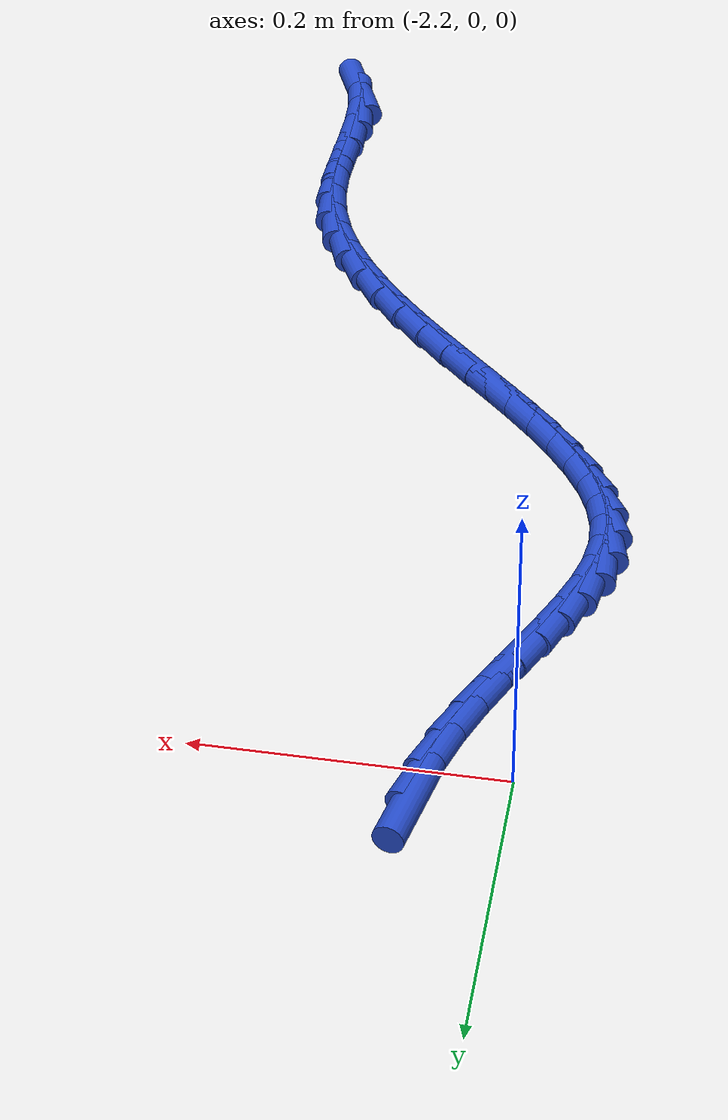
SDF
<sdf version="1.6">
 <world name="default">
  <model name="ground_plane">
   <static>1</static>
   <link name="link">
    <collision name="collision">
     <geometry><plane><normal>0 0 1</normal><size>100 100</size></plane></geometry>
     <surface><friction><ode><mu>100</mu><mu2>50</mu2></ode></friction></surface>
    </collision>
    <visual name="visual">
     <cast_shadows>0</cast_shadows>
     <geometry><plane><normal>0 0 1</normal><size>100 100</size></plane></geometry>
     <material>
      <script><uri>file://media/materials/scripts/gazebo.material</uri><name>Gazebo/WhiteGlow</name></script>
     </material>
    </visual>
   </link>
  </model>
  <model name="line">
   <link name="link_144">
    <pose>-2.1440855146847766 0.03046937966331754 0.01 0 1.57 1.3735774103940117</pose>
    <collision name="collision">
     <geometry><cylinder><radius>0.01</radius><length>0.08</length></cylinder></geometry>
    </collision>
    <visual name="visual">
     <material>
      <script><name>Gazebo/Blue</name><uri>file://media/materials/scripts/gazebo.material</uri></script>
     </material>
     <geometry><cylinder><radius>0.01</radius><length>0.08</length></cylinder></geometry>
    </visual>
   </link>
   <link name="link_145">
    <pose>-2.1498698966572496 0.0015208802135637668 0.01 0 1.57 1.280290084154568</pose>
    <collision name="collision">
     <geometry><cylinder><radius>0.01</radius><length>0.08</length></cylinder></geometry>
    </collision>
    <visual name="visual">
     <material>
      <script><name>Gazebo/Blue</name><uri>file://media/materials/scripts/gazebo.material</uri></script>
     </material>
     <geometry><cylinder><radius>0.01</radius><length>0.08</length></cylinder></geometry>
    </visual>
   </link>
   <link name="link_146">
    <pose>-2.158209626315839 -0.026374532809788173 0.01 0 1.57 1.209449345206597</pose>
    <collision name="collision">
     <geometry><cylinder><radius>0.01</radius><length>0.08</length></cylinder></geometry>
    </collision>
    <visual name="visual">
     <material>
      <script><name>Gazebo/Blue</name><uri>file://media/materials/scripts/gazebo.material</uri></script>
     </material>
     <geometry><cylinder><radius>0.01</radius><length>0.08</length></cylinder></geometry>
    </visual>
   </link>
   <link name="link_147">
    <pose>-2.168378878092354 -0.053281482775838426 0.01 0 1.57 1.1614478954639988</pose>
    <collision name="collision">
     <geometry><cylinder><radius>0.01</radius><length>0.08</length></cylinder></geometry>
    </collision>
    <visual name="visual">
     <material>
      <script><name>Gazebo/Blue</name><uri>file://media/materials/scripts/gazebo.material</uri></script>
     </material>
     <geometry><cylinder><radius>0.01</radius><length>0.08</length></cylinder></geometry>
    </visual>
   </link>
   <link name="link_148">
    <pose>-2.179651826418604 -0.07926459305368963 0.01 0 1.57 1.1365795767987124</pose>
    <collision name="collision">
     <geometry><cylinder><radius>0.01</radius><length>0.08</length></cylinder></geometry>
    </collision>
    <visual name="visual">
     <material>
      <script><name>Gazebo/Blue</name><uri>file://media/materials/scripts/gazebo.material</uri></script>
     </material>
     <geometry><cylinder><radius>0.01</radius><length>0.08</length></cylinder></geometry>
    </visual>
   </link>
   <link name="link_149">
    <pose>-2.1913026457263967 -0.10438848701244363 0.01 0 1.57 1.135885458106234</pose>
    <collision name="collision">
     <geometry><cylinder><radius>0.01</radius><length>0.08</length></cylinder></geometry>
    </collision>
    <visual name="visual">
     <material>
      <script><name>Gazebo/Blue</name><uri>file://media/materials/scripts/gazebo.material</uri></script>
     </material>
     <geometry><cylinder><radius>0.01</radius><length>0.08</length></cylinder></geometry>
    </visual>
   </link>
   <link name="link_150">
    <pose>-2.202605510447543 -0.1287177880212022 0.01 0 1.57 1.1617919074997225</pose>
    <collision name="collision">
     <geometry><cylinder><radius>0.01</radius><length>0.08</length></cylinder></geometry>
    </collision>
    <visual name="visual">
     <material>
      <script><name>Gazebo/Blue</name><uri>file://media/materials/scripts/gazebo.material</uri></script>
     </material>
     <geometry><cylinder><radius>0.01</radius><length>0.08</length></cylinder></geometry>
    </visual>
   </link>
   <link name="link_151">
    <pose>-2.212834595013853 -0.15231711944906728 0.01 0 1.57 1.2185695505602796</pose>
    <collision name="collision">
     <geometry><cylinder><radius>0.01</radius><length>0.08</length></cylinder></geometry>
    </collision>
    <visual name="visual">
     <material>
      <script><name>Gazebo/Blue</name><uri>file://media/materials/scripts/gazebo.material</uri></script>
     </material>
     <geometry><cylinder><radius>0.01</radius><length>0.08</length></cylinder></geometry>
    </visual>
   </link>
   <link name="link_152">
    <pose>-2.2212640738571343 -0.1752511046651406 0.01 0 1.57 1.3123475949545607</pose>
    <collision name="collision">
     <geometry><cylinder><radius>0.01</radius><length>0.08</length></cylinder></geometry>
    </collision>
    <visual name="visual">
     <material>
      <script><name>Gazebo/Blue</name><uri>file://media/materials/scripts/gazebo.material</uri></script>
     </material>
     <geometry><cylinder><radius>0.01</radius><length>0.08</length></cylinder></geometry>
    </visual>
   </link>
   <link name="link_153">
    <pose>-2.2271681214091967 -0.19758436703852397 0.01 0 1.57 1.4496884374471752</pose>
    <collision name="collision">
     <geometry><cylinder><radius>0.01</radius><length>0.08</length></cylinder></geometry>
    </collision>
    <visual name="visual">
     <material>
      <script><name>Gazebo/Blue</name><uri>file://media/materials/scripts/gazebo.material</uri></script>
     </material>
     <geometry><cylinder><radius>0.01</radius><length>0.08</length></cylinder></geometry>
    </visual>
   </link>
   <link name="link_154">
    <pose>-2.2298209121018506 -0.21938152993831933 0.01 0 1.57 -1.5103975755377679</pose>
    <collision name="collision">
     <geometry><cylinder><radius>0.01</radius><length>0.08</length></cylinder></geometry>
    </collision>
    <visual name="visual">
     <material>
      <script><name>Gazebo/Blue</name><uri>file://media/materials/scripts/gazebo.material</uri></script>
     </material>
     <geometry><cylinder><radius>0.01</radius><length>0.08</length></cylinder></geometry>
    </visual>
   </link>
   <link name="link_155">
    <pose>-2.228531248726997 -0.24070804301874704 0.01 0 1.57 -1.322508143157058</pose>
    <collision name="collision">
     <geometry><cylinder><radius>0.01</radius><length>0.08</length></cylinder></geometry>
    </collision>
    <visual name="visual">
     <material>
      <script><name>Gazebo/Blue</name><uri>file://media/materials/scripts/gazebo.material</uri></script>
     </material>
     <geometry><cylinder><radius>0.01</radius><length>0.08</length></cylinder></geometry>
    </visual>
   </link>
   <link name="link_156">
    <pose>-2.223223568138512 -0.2616440458951497 0.01 0 1.57 -1.1648010019456798</pose>
    <collision name="collision">
     <geometry><cylinder><radius>0.01</radius><length>0.08</length></cylinder></geometry>
    </collision>
    <visual name="visual">
     <material>
      <script><name>Gazebo/Blue</name><uri>file://media/materials/scripts/gazebo.material</uri></script>
     </material>
     <geometry><cylinder><radius>0.01</radius><length>0.08</length></cylinder></geometry>
    </visual>
   </link>
   <link name="link_157">
    <pose>-2.214351627352837 -0.28228230856362996 0.01 0 1.57 -1.0410605988646013</pose>
    <collision name="collision">
     <geometry><cylinder><radius>0.01</radius><length>0.08</length></cylinder></geometry>
    </collision>
    <visual name="visual">
     <material>
      <script><name>Gazebo/Blue</name><uri>file://media/materials/scripts/gazebo.material</uri></script>
     </material>
     <geometry><cylinder><radius>0.01</radius><length>0.08</length></cylinder></geometry>
    </visual>
   </link>
   <link name="link_158">
    <pose>-2.2023864253881644 -0.30271601244056534 0.01 0 1.57 -0.9482204916448498</pose>
    <collision name="collision">
     <geometry><cylinder><radius>0.01</radius><length>0.08</length></cylinder></geometry>
    </collision>
    <visual name="visual">
     <material>
      <script><name>Gazebo/Blue</name><uri>file://media/materials/scripts/gazebo.material</uri></script>
     </material>
     <geometry><cylinder><radius>0.01</radius><length>0.08</length></cylinder></geometry>
    </visual>
   </link>
   <link name="link_159">
    <pose>-2.187798961262683 -0.3230383389423329 0.01 0 1.57 -0.8813533372031582</pose>
    <collision name="collision">
     <geometry><cylinder><radius>0.01</radius><length>0.08</length></cylinder></geometry>
    </collision>
    <visual name="visual">
     <material>
      <script><name>Gazebo/Blue</name><uri>file://media/materials/scripts/gazebo.material</uri></script>
     </material>
     <geometry><cylinder><radius>0.01</radius><length>0.08</length></cylinder></geometry>
    </visual>
   </link>
   <link name="link_160">
    <pose>-2.1710602339945835 -0.34334246948531033 0.01 0 1.57 -0.8358763857724276</pose>
    <collision name="collision">
     <geometry><cylinder><radius>0.01</radius><length>0.08</length></cylinder></geometry>
    </collision>
    <visual name="visual">
     <material>
      <script><name>Gazebo/Blue</name><uri>file://media/materials/scripts/gazebo.material</uri></script>
     </material>
     <geometry><cylinder><radius>0.01</radius><length>0.08</length></cylinder></geometry>
    </visual>
   </link>
   <link name="link_161">
    <pose>-2.152641242602056 -0.36372158548587485 0.01 0 1.57 -0.8082694462301657</pose>
    <collision name="collision">
     <geometry><cylinder><radius>0.01</radius><length>0.08</length></cylinder></geometry>
    </collision>
    <visual name="visual">
     <material>
      <script><name>Gazebo/Blue</name><uri>file://media/materials/scripts/gazebo.material</uri></script>
     </material>
     <geometry><cylinder><radius>0.01</radius><length>0.08</length></cylinder></geometry>
    </visual>
   </link>
   <link name="link_162">
    <pose>-2.13301298610329 -0.38426886836040397 0.01 0 1.57 -0.796135016787994</pose>
    <collision name="collision">
     <geometry><cylinder><radius>0.01</radius><length>0.08</length></cylinder></geometry>
    </collision>
    <visual name="visual">
     <material>
      <script><name>Gazebo/Blue</name><uri>file://media/materials/scripts/gazebo.material</uri></script>
     </material>
     <geometry><cylinder><radius>0.01</radius><length>0.08</length></cylinder></geometry>
    </visual>
   </link>
   <link name="link_163">
    <pose>-2.1126464635164766 -0.40507749952527505 0.01 0 1.57 -0.7980627933638018</pose>
    <collision name="collision">
     <geometry><cylinder><radius>0.01</radius><length>0.08</length></cylinder></geometry>
    </collision>
    <visual name="visual">
     <material>
      <script><name>Gazebo/Blue</name><uri>file://media/materials/scripts/gazebo.material</uri></script>
     </material>
     <geometry><cylinder><radius>0.01</radius><length>0.08</length></cylinder></geometry>
    </visual>
   </link>
   <link name="link_164">
    <pose>-2.092012673859804 -0.42624066039686576 0.01 0 1.57 -0.8134780353032932</pose>
    <collision name="collision">
     <geometry><cylinder><radius>0.01</radius><length>0.08</length></cylinder></geometry>
    </collision>
    <visual name="visual">
     <material>
      <script><name>Gazebo/Blue</name><uri>file://media/materials/scripts/gazebo.material</uri></script>
     </material>
     <geometry><cylinder><radius>0.01</radius><length>0.08</length></cylinder></geometry>
    </visual>
   </link>
   <link name="link_165">
    <pose>-2.0715826161514657 -0.44785153239155284 0.01 0 1.57 -0.8425204942058271</pose>
    <collision name="collision">
     <geometry><cylinder><radius>0.01</radius><length>0.08</length></cylinder></geometry>
    </collision>
    <visual name="visual">
     <material>
      <script><name>Gazebo/Blue</name><uri>file://media/materials/scripts/gazebo.material</uri></script>
     </material>
     <geometry><cylinder><radius>0.01</radius><length>0.08</length></cylinder></geometry>
    </visual>
   </link>
   <link name="link_166">
    <pose>-2.0518272894096503 -0.47000329692571396 0.01 0 1.57 -0.8859444890195501</pose>
    <collision name="collision">
     <geometry><cylinder><radius>0.01</radius><length>0.08</length></cylinder></geometry>
    </collision>
    <visual name="visual">
     <material>
      <script><name>Gazebo/Blue</name><uri>file://media/materials/scripts/gazebo.material</uri></script>
     </material>
     <geometry><cylinder><radius>0.01</radius><length>0.08</length></cylinder></geometry>
    </visual>
   </link>
   <link name="link_167">
    <pose>-2.033217692652548 -0.49278913541572666 0.01 0 1.57 -0.9449986240425712</pose>
    <collision name="collision">
     <geometry><cylinder><radius>0.01</radius><length>0.08</length></cylinder></geometry>
    </collision>
    <visual name="visual">
     <material>
      <script><name>Gazebo/Blue</name><uri>file://media/materials/scripts/gazebo.material</uri></script>
     </material>
     <geometry><cylinder><radius>0.01</radius><length>0.08</length></cylinder></geometry>
    </visual>
   </link>
   <link name="link_168">
    <pose>-2.016224824898348 -0.516302229277968 0.01 0 1.57 -1.0212108459979312</pose>
    <collision name="collision">
     <geometry><cylinder><radius>0.01</radius><length>0.08</length></cylinder></geometry>
    </collision>
    <visual name="visual">
     <material>
      <script><name>Gazebo/Blue</name><uri>file://media/materials/scripts/gazebo.material</uri></script>
     </material>
     <geometry><cylinder><radius>0.01</radius><length>0.08</length></cylinder></geometry>
    </visual>
   </link>
   <link name="link_169">
    <pose>-2.001319685165243 -0.5406357599288159 0.01 0 1.57 -1.1159695775151677</pose>
    <collision name="collision">
     <geometry><cylinder><radius>0.01</radius><length>0.08</length></cylinder></geometry>
    </collision>
    <visual name="visual">
     <material>
      <script><name>Gazebo/Blue</name><uri>file://media/materials/scripts/gazebo.material</uri></script>
     </material>
     <geometry><cylinder><radius>0.01</radius><length>0.08</length></cylinder></geometry>
    </visual>
   </link>
   <link name="link_170">
    <pose>-1.9889732724714209 -0.5658829087846473 0.01 0 1.57 -1.2297913435908499</pose>
    <collision name="collision">
     <geometry><cylinder><radius>0.01</radius><length>0.08</length></cylinder></geometry>
    </collision>
    <visual name="visual">
     <material>
      <script><name>Gazebo/Blue</name><uri>file://media/materials/scripts/gazebo.material</uri></script>
     </material>
     <geometry><cylinder><radius>0.01</radius><length>0.08</length></cylinder></geometry>
    </visual>
   </link>
   <link name="link_171">
    <pose>-1.9796565858350725 -0.5921368572618397 0.01 0 1.57 -1.360916438762558</pose>
    <collision name="collision">
     <geometry><cylinder><radius>0.01</radius><length>0.08</length></cylinder></geometry>
    </collision>
    <visual name="visual">
     <material>
      <script><name>Gazebo/Blue</name><uri>file://media/materials/scripts/gazebo.material</uri></script>
     </material>
     <geometry><cylinder><radius>0.01</radius><length>0.08</length></cylinder></geometry>
    </visual>
   </link>
   <link name="link_172">
    <pose>-1.9738305654688124 -0.619486898226708 0.01 0 1.57 -1.4822129793873773</pose>
    <collision name="collision">
     <geometry><cylinder><radius>0.01</radius><length>0.08</length></cylinder></geometry>
    </collision>
    <visual name="visual">
     <material>
      <script><name>Gazebo/Blue</name><uri>file://media/materials/scripts/gazebo.material</uri></script>
     </material>
     <geometry><cylinder><radius>0.01</radius><length>0.08</length></cylinder></geometry>
    </visual>
   </link>
   <link name="link_173">
    <pose>-1.9713180772693657 -0.6477756566979455 0.01 0 1.57 -1.5573557319114717</pose>
    <collision name="collision">
     <geometry><cylinder><radius>0.01</radius><length>0.08</length></cylinder></geometry>
    </collision>
    <visual name="visual">
     <material>
      <script><name>Gazebo/Blue</name><uri>file://media/materials/scripts/gazebo.material</uri></script>
     </material>
     <geometry><cylinder><radius>0.01</radius><length>0.08</length></cylinder></geometry>
    </visual>
   </link>
   <link name="link_174">
    <pose>-1.970932579374579 -0.6764555391365376 0.01 0 1.57 1.554451356156422</pose>
    <collision name="collision">
     <geometry><cylinder><radius>0.01</radius><length>0.08</length></cylinder></geometry>
    </collision>
    <visual name="visual">
     <material>
      <script><name>Gazebo/Blue</name><uri>file://media/materials/scripts/gazebo.material</uri></script>
     </material>
     <geometry><cylinder><radius>0.01</radius><length>0.08</length></cylinder></geometry>
    </visual>
   </link>
   <link name="link_175">
    <pose>-1.9713982711961335 -0.7049444462142298 0.01 0 1.57 1.5693141082956132</pose>
    <collision name="collision">
     <geometry><cylinder><radius>0.01</radius><length>0.08</length></cylinder></geometry>
    </collision>
    <visual name="visual">
     <material>
      <script><name>Gazebo/Blue</name><uri>file://media/materials/scripts/gazebo.material</uri></script>
     </material>
     <geometry><cylinder><radius>0.01</radius><length>0.08</length></cylinder></geometry>
    </visual>
   </link>
   <link name="link_176">
    <pose>-1.9714393521457074 -0.7326602786027661 0.01 0 1.57 -1.507932036203771</pose>
    <collision name="collision">
     <geometry><cylinder><radius>0.01</radius><length>0.08</length></cylinder></geometry>
    </collision>
    <visual name="visual">
     <material>
      <script><name>Gazebo/Blue</name><uri>file://media/materials/scripts/gazebo.material</uri></script>
     </material>
     <geometry><cylinder><radius>0.01</radius><length>0.08</length></cylinder></geometry>
    </visual>
   </link>
   <link name="link_177">
    <pose>-1.9697800216349806 -0.7590209369738912 0.01 0 1.57 -1.3832280480286705</pose>
    <collision name="collision">
     <geometry><cylinder><radius>0.01</radius><length>0.08</length></cylinder></geometry>
    </collision>
    <visual name="visual">
     <material>
      <script><name>Gazebo/Blue</name><uri>file://media/materials/scripts/gazebo.material</uri></script>
     </material>
     <geometry><cylinder><radius>0.01</radius><length>0.08</length></cylinder></geometry>
    </visual>
   </link>
   <link name="link_178">
    <pose>-1.965144479075632 -0.7834443219993488 0.01 0 1.57 -1.1853428167300384</pose>
    <collision name="collision">
     <geometry><cylinder><radius>0.01</radius><length>0.08</length></cylinder></geometry>
    </collision>
    <visual name="visual">
     <material>
      <script><name>Gazebo/Blue</name><uri>file://media/materials/scripts/gazebo.material</uri></script>
     </material>
     <geometry><cylinder><radius>0.01</radius><length>0.08</length></cylinder></geometry>
    </visual>
   </link>
  </model>
 </world>
</sdf>
